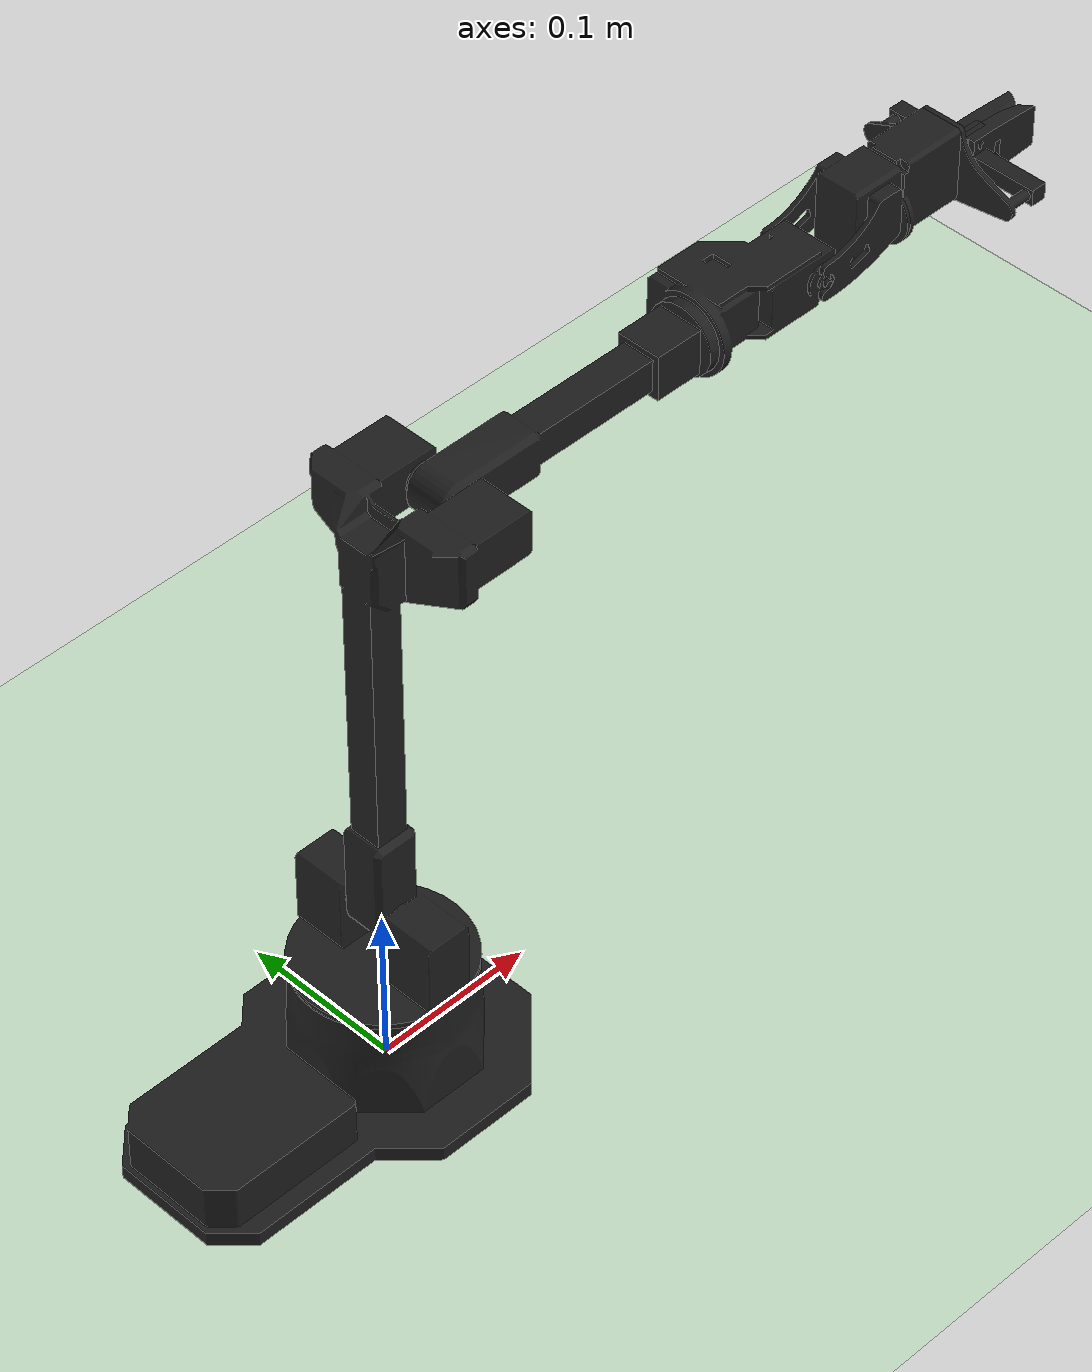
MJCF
<mujoco model="wx250s">
  <compiler angle="radian" meshdir="simplifiedassets" texturedir="simplifiedassets" autolimits="true"/>
  <option timestep="0.001" iterations="20" integrator="Euler" />

  <custom>
    <numeric data="10000" name="constraint_limit_stiffness"/>
    <numeric data="20000" name="constraint_stiffness"/>
    <numeric data="1 1 1 1 1 1 1 1 1 1" name="constraint_ang_damping"/>
    <numeric data="0.1" name="constraint_vel_damping"/>
    <numeric data="-1.0" name="vel_damping"/>
    <numeric data="-1.0" name="ang_damping"/>
    <numeric data="1.0" name="baumgarte_erp"/>
    <numeric data="0.3" name="spring_mass_scale"/>
    <numeric data="1.0" name="spring_inertia_scale"/>
    <numeric data="50" name="solver_maxls"/>
  </custom>

  <asset>
    <texture type="2d" file="interbotix_black.png"/>
    <material name="black" texture="interbotix_black"/>

    <mesh file="wx250s_1_base.stl" class="wx250s"/>
    <mesh file="wx250s_2_shoulder.stl" class="wx250s"/>
    <mesh file="wx250s_3_upper_arm.stl" class="wx250s"/>
    <mesh file="wx250s_4_upper_forearm.stl" class="wx250s"/>
    <mesh file="wx250s_5_lower_forearm.stl" class="wx250s"/>
    <mesh file="wx250s_6_wrist.stl" class="wx250s"/>
    <mesh file="wx250s_7_gripper.stl" class="wx250s"/>
    <mesh file="wx250s_8_gripper_prop.stl" class="wx250s"/>
    <mesh file="wx250s_9_gripper_bar.stl" class="wx250s"/>
    <mesh file="wx250s_10_gripper_finger.stl" class="wx250s"/>

    <texture builtin="checker" height="100" name="texplane" rgb1="0 0 0" rgb2="0.8 0.8 0.8" type="2d" width="100"/>
    <material name="MatPlane" reflectance="0.5" shininess="1" specular="1" texrepeat="60 60" texture="texplane"/>
  </asset>

  <default>
    <default class="wx250s">
      <mesh scale="0.001 0.001 0.001"/>
      <joint axis="0 1 0"  armature="0.1"/>
      <position kp="50" forcerange="-35 35"/> <!-- dampratio="0.95" -->
      <default class="visual">
        <geom type="mesh" contype="0" conaffinity="0" density="0" group="2" material="black"/>
      </default>
      <default class="collision">
        <geom group="3" type="mesh" contype="1" conaffinity="1"/>
        <default class="sphere_collision">
          <geom type="sphere" size="0.0006" rgba="1 0 0 1"/>
        </default>
      </default>
      <default class="nocollision">
        <geom group="3" type="mesh" contype="1" conaffinity="1"/>
        <default class="sphere_nocollision">
          <geom type="sphere" size="0.0006" rgba="1 0 0 1"/>
        </default>
      </default>
    </default>
  </default>

  <worldbody>
    <light cutoff="100" diffuse="1 1 1" dir="-0 0 -1.3" directional="true" exponent="1" pos="0 0 1.3" specular=".1 .1 .1"/>
    <geom contype="1" conaffinity="1" condim="3" material="MatPlane" name="floor" pos="0 0 0" rgba="0.8 0.9 0.8 1" size="40 40 40" type="plane" />
    <body name="wx250s/base_link" childclass="wx250s">
      <camera name="tracking" mode="fixed" pos="0 -2 2" xyaxes="1 0 0 0 1 1"/>
      <joint type="slide" stiffness="1000" damping="1000" frictionloss="0" armature="1000"  range="-0.000001 0.000001" name="baseinertia"/>
      <inertial pos="-0.0380446 0.000613892 0.0193354" quat="0.509292 0.490887 -0.496359 0.503269" mass="20000.0"
        diaginertia="0.00252518 0.00211519 0.000690737"/> <!-- insanely high mass to fix robot in place -->
      <geom quat="1 0 0 1" mesh="wx250s_1_base" class="visual"/>
      <geom quat="1 0 0 1" mesh="wx250s_1_base" class="collision"/>
      <body name="wx250s/shoulder_link" pos="0 0 0.072">
        <inertial pos="2.23482e-05 4.14609e-05 0.0066287" quat="0.0130352 0.706387 0.012996 0.707586" mass="0.480879"
          diaginertia="0.000588946 0.000555655 0.000378999"/>
        <joint name="waist" axis="0 0 1" range="-3.14158 3.14158"/>
        <geom pos="0 0 -0.003" quat="1 0 0 1" mesh="wx250s_2_shoulder" class="visual"/>
        <geom pos="0 0 -0.003" quat="1 0 0 1" mesh="wx250s_2_shoulder" class="collision"/>
        <body name="wx250s/upper_arm_link" pos="0 0 0.03865">
          <inertial pos="0.0171605 2.725e-07 0.191323" quat="0.705539 0.0470667 -0.0470667 0.705539" mass="0.430811"
            diaginertia="0.00364425 0.003463 0.000399348"/>
          <joint name="shoulder" range="-1.88496 1.98968"/>
          <geom quat="1 0 0 1" mesh="wx250s_3_upper_arm" class="visual"/>
          <geom quat="1 0 0 1" mesh="wx250s_3_upper_arm" class="collision"/>
          <body name="wx250s/upper_forearm_link" pos="0.04975 0 0.25">
            <inertial pos="0.107963 0.000115876 0" quat="0.000980829 0.707106 -0.000980829 0.707106" mass="0.234589"
              diaginertia="0.000888 0.000887807 3.97035e-05"/>
            <joint name="elbow" range="-2.14675 1.6057"/>
            <geom mesh="wx250s_4_upper_forearm" class="visual"/>
            <geom mesh="wx250s_4_upper_forearm" class="collision"/>
            <body name="wx250s/lower_forearm_link" pos="0.175 0 0">
              <inertial pos="0.0374395 0.00522252 0" quat="-0.0732511 0.703302 0.0732511 0.703302" mass="0.220991"
                diaginertia="0.0001834 0.000172527 5.88633e-05"/>
              <joint name="forearm_roll" axis="1 0 0" range="-3.14158 3.14158"/>
              <geom quat="0 1 0 0" mesh="wx250s_5_lower_forearm" class="visual"/>
              <geom quat="0 1 0 0" mesh="wx250s_5_lower_forearm" class="collision"/>
              <body name="wx250s/wrist_link" pos="0.075 0 0">
                <inertial pos="0.04236 -1.0663e-05 0.010577" quat="0.608721 0.363497 -0.359175 0.606895" mass="0.084957"
                  diaginertia="3.29057e-05 3.082e-05 2.68343e-05"/>
                <joint name="wrist_angle" axis="0 1 0" range="-1.74533 2.14675"/>
                <geom quat="1 0 0 1" mesh="wx250s_6_wrist" class="visual"/>
                <geom quat="1 0 0 1" mesh="wx250s_6_wrist" class="collision"/>
                <body name="wx250s/gripper_link" pos="0.065 0 0">
                  <inertial pos="0.0325296 4.2061e-07 0.0090959" quat="0.546081 0.419626 0.62801 0.362371"
                    mass="0.110084" diaginertia="0.00307592 0.00307326 0.0030332"/>
                  <joint name="wrist_rotate" axis="1 0 0" range="-3.14158 3.14158"/>
                  <geom pos="-0.02 0 0" quat="1 0 0 1" mesh="wx250s_7_gripper" class="visual"/>
                  <geom pos="-0.02 0 0" quat="1 0 0 1" mesh="wx250s_7_gripper" class="collision"/>
                  <geom pos="-0.02 0 0" quat="1 0 0 1" mesh="wx250s_9_gripper_bar" class="visual"/>
                  <geom pos="-0.02 0 0" quat="1 0 0 1" mesh="wx250s_9_gripper_bar" class="collision"/>
                  <body name="wx250s/left_finger_link" pos="0.066 0 0">
                    <inertial pos="0.013816 0 0" quat="0.705384 0.705384 -0.0493271 -0.0493271" mass="0.016246"
                      diaginertia="4.79509e-06 3.7467e-06 1.48651e-06"/>
                    <joint name="left_finger" axis="0 1 0" type="slide" range="0.015 0.037"/>
                    <geom pos="0 0.005 0" quat="0 0 0 -1" mesh="wx250s_10_gripper_finger" class="visual"/>
                    <geom pos="0 0.005 0" quat="0 0 0 -1" mesh="wx250s_10_gripper_finger" class="collision"/>
                  </body>
                  <body name="wx250s/right_finger_link" pos="0.066 0 0">
                    <inertial pos="0.013816 0 0" quat="0.705384 0.705384 0.0493271 0.0493271" mass="0.016246"
                      diaginertia="4.79509e-06 3.7467e-06 1.48651e-06"/>
                    <joint name="right_finger" axis="0 1 0" type="slide" range="-0.037 -0.015"/>
                    <geom pos="0 -0.005 0" quat="0 0 1 0" mesh="wx250s_10_gripper_finger" class="visual"/>
                    <geom pos="0 -0.005 0" quat="0 0 1 0" mesh="wx250s_10_gripper_finger" class="collision"/>
                  </body>
                </body>
              </body>
            </body>
          </body>
        </body>
      </body>
    </body>
    <body name="target" pos="0 0 0.01" gravcomp="1">
        <!-- The joint `ref` attributes are removed for brax. -->
        <joint armature="0" axis="1 0 0" damping="0" limited="true" name="target_x" pos="0 0 0" range="-.66 .66" stiffness="0" type="slide"/>
        <joint armature="0" axis="0 1 0" damping="0" limited="true" name="target_y" pos="0 0 0" range="-.66 .66" stiffness="0" type="slide"/>
        <joint armature="0" axis="0 0 1" damping="0" limited="true" name="target_z" pos="0 0 0" range="-.66 .66" stiffness="0" type="slide"/>
        <geom conaffinity="0" contype="0" name="target" pos="0 0 0" size=".009" type="sphere" rgba="0 1 0 1"/>
    </body>
  </worldbody>

  <equality>
    <joint joint1="left_finger" joint2="right_finger" polycoef="0 -1 0 0 0"/>
  </equality>

  <actuator>
    <motor forcerange="-35 35"  ctrllimited="true" ctrlrange="-1.0 1.0" gear="75" class="wx250s" name="waist" joint="waist"/>
    <motor forcerange="-35 35"  ctrllimited="true" ctrlrange="-1.0 1.0" gear="75" class="wx250s" name="shoulder" joint="shoulder" />
    <motor forcerange="-35 35"   ctrllimited="true" ctrlrange="-1.0 1.0" gear="75" class="wx250s" name="elbow" joint="elbow" />
    <motor forcerange="-35 35"  ctrllimited="true" ctrlrange="-1.0 1.0" gear="75" class="wx250s" name="forearm_roll" joint="forearm_roll" />
    <motor forcerange="-35 35"   ctrllimited="true" ctrlrange="-1.0 1.0" gear="75" class="wx250s" name="wrist_angle" joint="wrist_angle" />
    <motor forcerange="-0.1 0.1"  ctrllimited="true" ctrlrange="-1.0 1.0" gear="1" class="wx250s" name="wrist_rotate" joint="wrist_rotate" />
    <motor forcerange="-0.1 0.1"  ctrllimited="true" ctrlrange="-1.0 1.0" gear="1" class="wx250s" name="gripper" joint="left_finger" />
  </actuator>

</mujoco>
